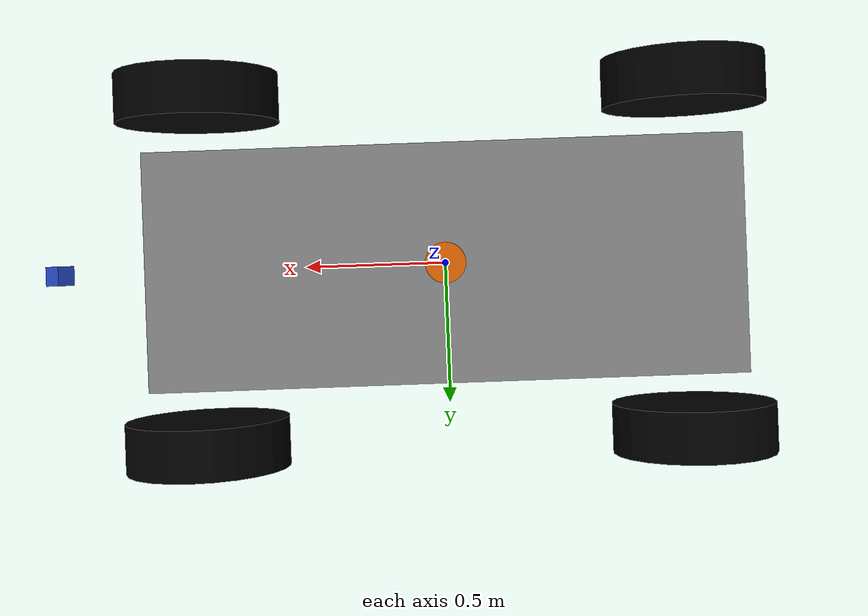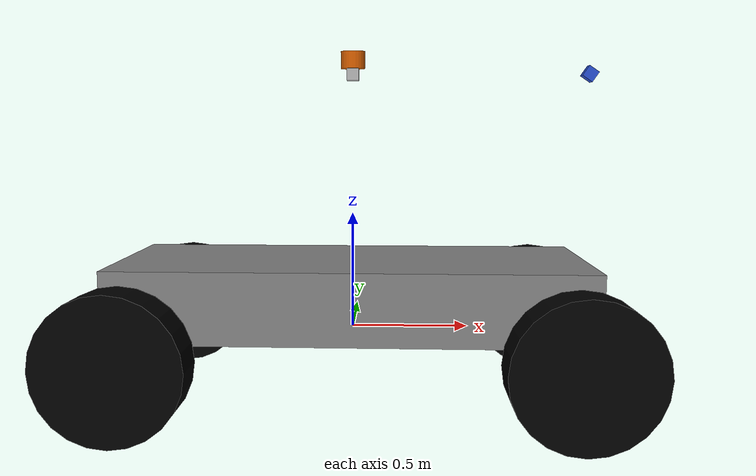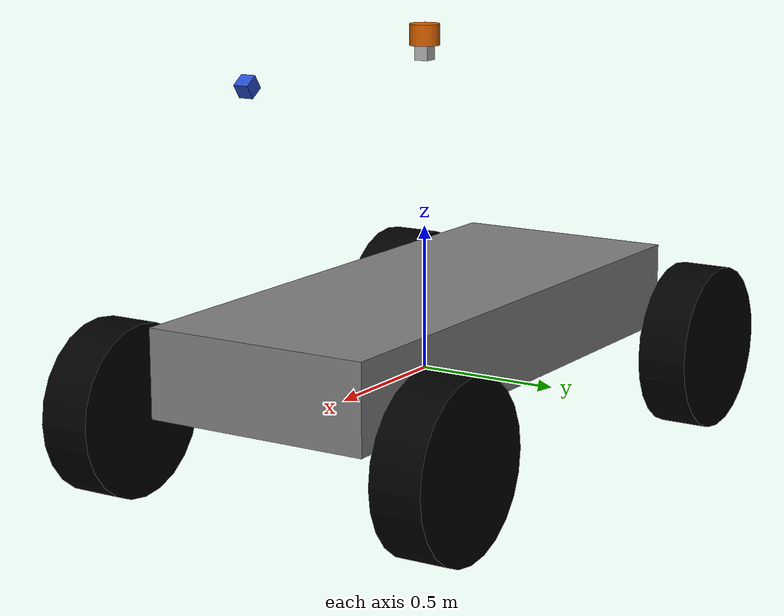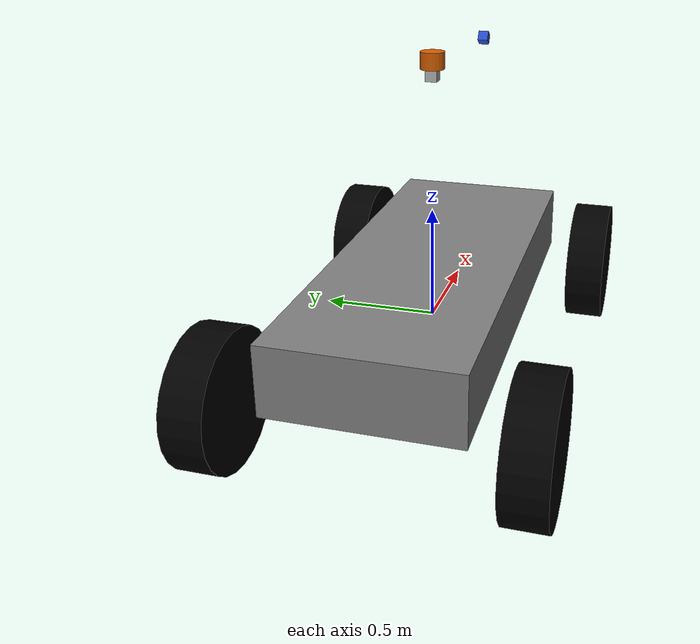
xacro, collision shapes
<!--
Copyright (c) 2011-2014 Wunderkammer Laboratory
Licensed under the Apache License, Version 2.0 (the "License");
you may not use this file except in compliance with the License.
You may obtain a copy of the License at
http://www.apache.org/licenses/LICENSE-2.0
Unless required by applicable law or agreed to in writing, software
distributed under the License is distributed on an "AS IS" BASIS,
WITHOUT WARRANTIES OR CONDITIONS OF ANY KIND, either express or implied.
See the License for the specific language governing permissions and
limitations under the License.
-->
<?xml version="1.0"?>

<robot name="em_3905" xmlns:xacro="http://www.ros.org/wiki/xacro">

	<xacro:macro name="cylinder_inertia" params="m r h">
		<inertia  ixx="${m*(3*r*r+h*h)/12}" ixy = "0" ixz = "0"
		          iyy="${m*(3*r*r+h*h)/12}" iyz = "0"
		          izz="${m*r*r/2}" />
	</xacro:macro>

	<xacro:macro name="box_inertia" params="m x y z">
		<inertia  ixx="${m*(y*y+z*z)/12}" ixy = "0" ixz = "0"
		          iyy="${m*(x*x+z*z)/12}" iyz = "0"
		          izz="${m*(x*x+z*z)/12}" />
	</xacro:macro>

	<xacro:macro name="sphere_inertia" params="m r">
		<inertia  ixx="${2*m*r*r/5}" ixy = "0" ixz = "0"
		          iyy="${2*m*r*r/5}" iyz = "0"
		          izz="${2*m*r*r/5}" />
	</xacro:macro>

  <!-- Degree-to-radian conversions -->
  <xacro:property name="degrees_45" value="0.785398163"/>
  <xacro:property name="degrees_90" value="1.57079633"/>

  <!-- chassis_length is measured along the x axis, chassis_width
       along the y axis, and chassis_height along the z axis. -->
  <xacro:property name="chassis_length" value="2.0"/>
  <xacro:property name="chassis_width" value="0.8"/>
  <xacro:property name="chassis_height" value="0.3"/>
  <xacro:property name="chassis_mass" value="2.788"/>

  <xacro:property name="hub_dia" value="0.381"/>
  <xacro:property name="tire_dia" value="0.5842"/>
  <xacro:property name="tire_width" value="0.1778"/>
  <xacro:property name="hex_hub_depth" value="0.0889"/>
  <xacro:property name="wheel_mass" value="0.9"/>

  <xacro:property name="wheelbase" value="1.7526"/>
  <xacro:property name="hex_hub_dist" value="1.2446"/>
  <xacro:property name="axle_length" value="0.0"/>
  <xacro:property name="wheel_travel" value="0.084"/>
  <xacro:property name="shock_z_offset" value="0.0655"/>

  <xacro:property name="shock_eff_limit" value="12.5106"/>
  <xacro:property name="shock_vel_limit" value="1000"/>

  <xacro:property name="axle_eff_limit" value="5.12766"/>
  <xacro:property name="axle_vel_limit" value="244.8696"/>

  <!-- These constants are used to simulate a Traxxas 2056 servo operated at
       6 V. servo_stall_torque is measured in N m. servo_no_load_speed is
       measured in rad/s. -->
  <xacro:property name="servo_stall_torque" value="10"/>
  <xacro:property name="servo_no_load_speed" value="20"/>

	<xacro:property name="cameraSize" value=".05"/>

  <material name="battery_mat">
    <color rgba="0 0 1 1"/>
  </material>
  <material name="chassis_mat">
    <color rgba="0.5 0.5 0.5 1"/>
  </material>
  <material name="tire_mat">
    <color rgba="0 0 0 1"/>
  </material>

  <!-- Null inertial element. This is needed to make the model work with
       Gazebo. -->
  <xacro:macro name="null_inertial">
    <inertial>
      <mass value="0.001"/>
      <inertia ixx="0.001" ixy="0" ixz="0" iyy="0.001" iyz="0" izz="0.001"/>
    </inertial>
  </xacro:macro>

  <!-- Inertia of a solid cuboid. Width is measured along the x axis, depth
       along the y axis, and height along the z axis. -->
  <xacro:macro name="solid_cuboid_inertial"
               params="width depth height mass *origin">
    <inertial>
      <xacro:insert_block name="origin"/>
      <mass value="${mass}"/>
      <inertia ixx="${mass * (depth * depth + height * height) / 12}"
               ixy="0" ixz="0"
               iyy="${mass * (width * width + height * height) / 12}"
               iyz="0"
               izz="${mass * (width * width + depth * depth) / 12}"/>
    </inertial>
  </xacro:macro>

  <xacro:macro name="thick_walled_tube_inertial"
               params="inner_rad outer_rad height mass">
    <inertial>
      <mass value="${mass}"/>
      <inertia ixx="${(1 / 12) * mass * (3 * (inner_rad * inner_rad +
                    outer_rad * outer_rad) + height * height)}"
               ixy="0" ixz="0"
               iyy="${(1 / 12) * mass * (3 * (inner_rad * inner_rad +
                    outer_rad * outer_rad) + height * height)}"
               iyz="0"
               izz="${mass * (inner_rad * inner_rad +
                    outer_rad * outer_rad) / 2}"/>
    </inertial>
  </xacro:macro>

  <!-- Shock absorber -->
  <xacro:macro name="shock"
               params="lr_prefix fr_prefix lr_reflect fr_reflect child">
    <joint name="${lr_prefix}_${fr_prefix}_shock" type="prismatic">
      <parent link="chassis"/>
      <child link="${child}"/>

      <origin xyz="${fr_reflect * wheelbase / 2}
                   ${lr_reflect * ((hex_hub_dist / 2) - axle_length)}
                   ${(wheel_travel / 2) - shock_z_offset}"/>
      <axis xyz="0 0 -1"/>
      <limit lower="${-wheel_travel / 2}" upper="${wheel_travel / 2}"
             effort="${shock_eff_limit}" velocity="${shock_vel_limit}"/>
    </joint>
    <transmission name="${lr_prefix}_${fr_prefix}_shock_trans">
      <type>transmission_interface/SimpleTransmission</type>
      <joint name="${lr_prefix}_${fr_prefix}_shock">
        <hardwareInterface>EffortJointInterface</hardwareInterface>
      </joint>
      <actuator name="${lr_prefix}_${fr_prefix}_shock_act">
        <!-- This hardwareInterface element exists for compatibility
             with ROS Hydro. -->
        <hardwareInterface>EffortJointInterface</hardwareInterface>
        <mechanicalReduction>1</mechanicalReduction>
      </actuator>
    </transmission>
  </xacro:macro>

  <!-- The "wheel" macro defines an axle carrier, axle, and wheel. -->
  <xacro:macro name="wheel" params="lr_prefix fr_prefix lr_reflect">
    <link name="${lr_prefix}_${fr_prefix}_axle_carrier">
      <xacro:null_inertial/>
    </link>

    <!-- The left and right axles have the same axis so that identical
         rotation values cause the wheels to rotate in the same direction. -->
    <joint name="${lr_prefix}_${fr_prefix}_axle" type="continuous">
      <parent link="${lr_prefix}_${fr_prefix}_axle_carrier"/>
      <child link="${lr_prefix}_${fr_prefix}_wheel"/>
      <origin rpy="${degrees_90} 0 0"/>
      <axis xyz="0 0 -1"/>
      <limit effort="${axle_eff_limit}" velocity="${axle_vel_limit}"/>
    </joint>
    <transmission name="${lr_prefix}_${fr_prefix}_axle_trans">
      <type>transmission_interface/SimpleTransmission</type>
      <joint name="${lr_prefix}_${fr_prefix}_axle">
        <hardwareInterface>EffortJointInterface</hardwareInterface>
      </joint>
      <actuator name="${lr_prefix}_${fr_prefix}_axle_act">
        <!-- This hardwareInterface element exists for compatibility
             with ROS Hydro. -->
        <hardwareInterface>EffortJointInterface</hardwareInterface>
        <mechanicalReduction>1</mechanicalReduction>
      </actuator>
    </transmission>

    <link name="${lr_prefix}_${fr_prefix}_wheel">
      <visual>
        <origin xyz="0
                     ${lr_reflect * (axle_length - (tire_width /
                     2 - hex_hub_depth))}
                     0"/>
        <geometry>
          <cylinder radius="${tire_dia / 2}" length="${tire_width}"/>
        </geometry>
        <material name="tire_mat"/>
      </visual>

      <collision>
        <origin xyz="0
                     ${lr_reflect * (axle_length - (tire_width /
                     2 - hex_hub_depth))}
                     0"/>
        <geometry>
          <cylinder radius="${tire_dia / 2}" length="${tire_width}"/>
        </geometry>
      </collision>

      <xacro:thick_walled_tube_inertial
          inner_rad="${hub_dia / 2}" outer_rad="${tire_dia / 2}"
          height="${tire_width}" mass="${wheel_mass}"/>
    </link>

    <gazebo reference="${lr_prefix}_${fr_prefix}_wheel">
      <material>Gazebo/Black</material>
    </gazebo>
  </xacro:macro>

  <!-- Front wheel -->
  <xacro:macro name="front_wheel"
               params="lr_prefix fr_prefix lr_reflect fr_reflect">
    <xacro:shock lr_prefix="${lr_prefix}" fr_prefix="${fr_prefix}"
                 lr_reflect="${lr_reflect}" fr_reflect="${fr_reflect}"
                 child="${lr_prefix}_steering_link"/>

    <link name="${lr_prefix}_steering_link">
      <xacro:null_inertial/>
    </link>

    <joint name="${lr_prefix}_steering_joint" type="revolute">
      <parent link="${lr_prefix}_steering_link"/>
      <child link="${lr_prefix}_${fr_prefix}_axle_carrier"/>
      <axis xyz="0 0 1"/>
      <limit lower="${-degrees_45}" upper="${degrees_45}"
             effort="${servo_stall_torque}" velocity="${servo_no_load_speed}"/>
    </joint>
    <transmission name="${lr_prefix}_steering_trans">
      <type>transmission_interface/SimpleTransmission</type>
      <joint name="${lr_prefix}_steering_joint">
        <hardwareInterface>EffortJointInterface</hardwareInterface>
      </joint>
      <actuator name="${lr_prefix}_steering_act">
        <!-- This hardwareInterface element exists for compatibility
             with ROS Hydro. -->
        <hardwareInterface>EffortJointInterface</hardwareInterface>
        <mechanicalReduction>1</mechanicalReduction>
      </actuator>
    </transmission>

    <xacro:wheel lr_prefix="${lr_prefix}" fr_prefix="${fr_prefix}"
                 lr_reflect="${lr_reflect}"/>
  </xacro:macro>

  <!-- Rear wheel -->
  <xacro:macro name="rear_wheel"
               params="lr_prefix fr_prefix lr_reflect fr_reflect">
    <xacro:shock lr_prefix="${lr_prefix}" fr_prefix="${fr_prefix}"
                 lr_reflect="${lr_reflect}" fr_reflect="${fr_reflect}"
                 child="${lr_prefix}_${fr_prefix}_axle_carrier"/>
    <xacro:wheel lr_prefix="${lr_prefix}" fr_prefix="${fr_prefix}"
                 lr_reflect="${lr_reflect}"/>
  </xacro:macro>

  <!-- base_link must have geometry so that its axes can be displayed in
       rviz. -->
  <link name="base_link">
    <visual>
      <geometry>
        <box size="0.01 0.01 0.01"/>
      </geometry>
      <material name="chassis_mat"/>
    </visual>
  </link>
  <gazebo reference="base_link">
    <material>Gazebo/Grey</material>
  </gazebo>

  <!-- Chassis -->
  <link name="chassis">
    <visual>
      <origin xyz="0 0 ${chassis_height / 2}"/>
      <geometry>
        <box size="${chassis_length} ${chassis_width} ${chassis_height}"/>
      </geometry>
      <material name="chassis_mat"/>
    </visual>

    <collision>
      <origin xyz="0 0 ${chassis_height / 2}"/>
      <geometry>
        <box size="${chassis_length} ${chassis_width} ${chassis_height}"/>
      </geometry>
    </collision>

    <xacro:solid_cuboid_inertial
        width="${chassis_length}" depth="${chassis_width}"
        height="${chassis_height}" mass="${chassis_mass}">
      <origin xyz="0 0 ${-chassis_height / 2}"/>
    </xacro:solid_cuboid_inertial>
  </link>
  <gazebo reference="chassis">
    <material>Gazebo/Grey</material>
  </gazebo>

  <joint name="base_link_to_chassis" type="fixed">
    <parent link="base_link"/>
    <child link="chassis"/>
  </joint>

  <!-- Wheels -->
  <xacro:front_wheel lr_prefix="left" fr_prefix="front"
                     lr_reflect="1" fr_reflect="1"/>
  <xacro:front_wheel lr_prefix="right" fr_prefix="front"
                     lr_reflect="-1" fr_reflect="1"/>
  <xacro:rear_wheel lr_prefix="left" fr_prefix="rear"
                    lr_reflect="1" fr_reflect="-1"/>
  <xacro:rear_wheel lr_prefix="right" fr_prefix="rear"
                    lr_reflect="-1" fr_reflect="-1"/>

  <gazebo>
    <plugin name="gazebo_ros_control" filename="libgazebo_ros_control.so"/>
		<legacyModeNS>true</legacyModeNS>
  </gazebo>

	<!-- Camera -->
	<!-- You can adjust the camera angle with the p in rpy, measured in radians. -->
	<!-- You can also increate the height of the camera by adding a number, in meters, -->
	<!-- to the z in xyz. For example, to simulate a camera mounted on a 1/2 meter post, -->
	<!-- we can replace the z value with ${wheelRadius+chassisHeight+0.5}   							-->
  <joint name="camera_joint" type="fixed">
    <origin xyz="${chassis_length/2} 0 ${(tire_dia/2)+chassis_height+.5}" rpy="0 .6 0"/>
    <parent link="chassis"/>
    <child link="camera"/>
  </joint>

  <link name="camera">
    <collision>
      <origin xyz="0 0 0" rpy="0 0 0"/>
      <geometry>
	<box size="${cameraSize} ${cameraSize} ${cameraSize}"/>
      </geometry>
    </collision>

    <visual>
      <origin xyz="0 0 0" rpy="0 0 0"/>
      <geometry>
	<box size="${cameraSize} ${cameraSize} ${cameraSize}"/>
      </geometry>
      <material name="blue"/>
    </visual>

    <inertial>
      <mass value="0.05" />
      <origin xyz="0 0 0" rpy="0 0 0"/>
      <box_inertia m="0.05" x="${cameraSize}" y="${cameraSize}" z="${cameraSize}" />
    </inertial>
  </link>

 <gazebo reference="camera">
  <material>Gazebo/Blue</material>
  <sensor type="camera" name="camera1">
      <update_rate>30.0</update_rate>
      <camera name="head">
        <horizontal_fov>1.3962634</horizontal_fov>
        <image>
          <width>800</width>
          <height>800</height>
          <format>R8G8B8</format>
        </image>
        <clip>
          <near>0.02</near>
          <far>300</far>
        </clip>
      </camera>
      <plugin name="camera_controller" filename="libgazebo_ros_camera.so">
        <alwaysOn>true</alwaysOn>
        <updateRate>0.0</updateRate>
        <cameraName>camera1</cameraName>
        <imageTopicName>image_raw</imageTopicName>
        <cameraInfoTopicName>camera_info</cameraInfoTopicName>
        <frameName>camera_link</frameName>
        <hackBaseline>0.07</hackBaseline>
        <distortionK1>0.0</distortionK1>
        <distortionK2>0.0</distortionK2>
        <distortionK3>0.0</distortionK3>
        <distortionT1>0.0</distortionT1>
        <distortionT2>0.0</distortionT2>
      </plugin>
    </sensor>
 </gazebo>

  <xacro:include filename="$(find velodyne_description)/urdf/VLP-16.urdf.xacro"/>
  <VLP-16 parent="mount" name="velodyne" topic="/velodyne_points">
    <origin xyz="0 0 0.025" rpy="0 0 0" />
  </VLP-16>

  <joint name="mount" type="fixed" >
   <parent link="chassis" />
    <child link="mount" />
    <origin xyz="0 0 ${(tire_dia/2)+chassis_height+0.5}" rpy="0 0 0" />
  </joint>
  <link name="mount" >
    <visual>
      <geometry>
        <box size="0.05 0.05 0.05" />
      </geometry>
    </visual>
    <collision>
      <geometry>
        <box size="0.05 0.05 0.05" />
      </geometry>
    </collision>
    <inertial>
      <origin xyz="0 0 0"/>
      <mass value="10"/>
      <inertia ixx="3.0" ixy="0.0" ixz="0.0"
               iyy="3.0" iyz="0.0"
               izz="3.0" />
    </inertial>
  </link>

</robot>

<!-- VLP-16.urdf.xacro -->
<robot xmlns:xacro="http://www.ros.org/wiki/xacro" name="VLP-16">
  <xacro:property name="M_PI" value="3.1415926535897931" />
  <xacro:macro name="VLP-16" params="*origin is_sim:=true parent:=base_link name:=velodyne tf_prefix:='' topic:=/velodyne_points organize_cloud:=false hz:=10 lasers:=16 samples:=1875 collision_range:=0.3 min_range:=0.0 max_range:=100.0 noise:=0.008 min_angle:=-${M_PI} max_angle:=${M_PI} gpu:=false">

    <joint name="${name}_base_mount_joint" type="fixed">
      <xacro:insert_block name="origin" />
      <parent link="${parent}"/>
      <child link="${name}_base_link"/>
    </joint>

    <link name="${name}_base_link">
      <inertial>
        <mass value="0.83"/>
        <origin xyz="0 0 0.03585"/>
        <inertia ixx="${(0.83 * (3.0*0.0516*0.0516 + 0.0717*0.0717)) / 12.0}" ixy="0" ixz="0"
          iyy="${(0.83 * (3.0*0.0516*0.0516 + 0.0717*0.0717)) / 12.0}" iyz="0"
          izz="${0.5 * 0.83 * (0.0516*0.0516)}"/>
      </inertial>
      <visual>
        <geometry>
          <mesh filename="package://velodyne_description/meshes/VLP16_base_1.dae" />
        </geometry>
      </visual>
      <visual>
        <geometry>
          <mesh filename="package://velodyne_description/meshes/VLP16_base_2.dae" />
        </geometry>
      </visual>
      <collision>
        <origin rpy="0 0 0" xyz="0 0 0.03585"/>
        <geometry>
          <cylinder radius="0.0516" length="0.0717"/>
        </geometry>
      </collision>
    </link>

    <joint name="${name}_base_scan_joint" type="fixed" >
      <origin xyz="0 0 0.0377" rpy="0 0 0" />
      <parent link="${name}_base_link" />
      <child link="${name}"/>
    </joint>

    <link name="${name}">
      <inertial>
        <mass value="0.01"/>
        <origin xyz="0 0 0"/>
        <inertia ixx="1e-7" ixy="0" ixz="0" iyy="1e-7" iyz="0" izz="1e-7"/>
      </inertial>
      <visual>
        <origin xyz="0 0 -0.0377" />
        <geometry>
          <mesh filename="package://velodyne_description/meshes/VLP16_scan.dae" />
        </geometry>
      </visual>
      <collision>
        <geometry>
          <sphere radius="0"/>
        </geometry>
      </collision>
    </link>

    <!-- Gazebo requires the velodyne_gazebo_plugins package -->
    <xacro:if value="${is_sim}">
        <gazebo reference="${name}">
            <xacro:if value="${gpu}">
                <sensor type="gpu_ray" name="${name}-VLP16">
                <pose>0 0 0 0 0 0</pose>
                <visualize>false</visualize>
                <update_rate>${hz}</update_rate>
                <ray>
                    <scan>
                    <horizontal>
                        <samples>${samples}</samples>
                        <resolution>1</resolution>
                        <min_angle>${min_angle}</min_angle>
                        <max_angle>${max_angle}</max_angle>
                    </horizontal>
                    <vertical>
                        <samples>${lasers}</samples>
                        <resolution>1</resolution>
                        <min_angle>-${15.0*M_PI/180.0}</min_angle>
                        <max_angle> ${15.0*M_PI/180.0}</max_angle>
                    </vertical>
                    </scan>
                    <range>
                    <min>${collision_range}</min>
                    <max>${max_range+1}</max>
                    <resolution>0.001</resolution>
                    </range>
                    <noise>
                    <type>gaussian</type>
                    <mean>0.0</mean>
                    <stddev>0.0</stddev>
                    </noise>
                </ray>
                <plugin name="gazebo_ros_laser_controller" filename="libgazebo_ros_velodyne_laser.so">
                    <ros>
                    <namespace>/${name}</namespace>
                    <remapping>~/out:=${topic}</remapping>
                    </ros>
                    <tf_prefix>${tf_prefix}</tf_prefix>
                    <frame_name>${name}</frame_name>
                    <organize_cloud>${organize_cloud}</organize_cloud>
                    <min_range>${min_range}</min_range>
                    <max_range>${max_range}</max_range>
                    <gaussian_noise>${noise}</gaussian_noise>
                </plugin>
                </sensor>
            </xacro:if>
            <xacro:unless value="${gpu}">
                <sensor type="ray" name="${name}-VLP16">
                <pose>0 0 0 0 0 0</pose>
                <visualize>false</visualize>
                <update_rate>${hz}</update_rate>
                <ray>
                    <scan>
                    <horizontal>
                        <samples>${samples}</samples>
                        <resolution>1</resolution>
                        <min_angle>${min_angle}</min_angle>
                        <max_angle>${max_angle}</max_angle>
                    </horizontal>
                    <vertical>
                        <samples>${lasers}</samples>
                        <resolution>1</resolution>
                        <min_angle>-${15.0*M_PI/180.0}</min_angle>
                        <max_angle> ${15.0*M_PI/180.0}</max_angle>
                    </vertical>
                    </scan>
                    <range>
                    <min>${collision_range}</min>
                    <max>${max_range+1}</max>
                    <resolution>0.001</resolution>
                    </range>
                    <noise>
                    <type>gaussian</type>
                    <mean>0.0</mean>
                    <stddev>0.0</stddev>
                    </noise>
                </ray>
                <plugin name="gazebo_ros_laser_controller" filename="libgazebo_ros_velodyne_laser.so">
                    <ros>
                    <namespace>/${name}</namespace>
                    <remapping>~/out:=${topic}</remapping>
                    </ros>
                    <tf_prefix>${tf_prefix}</tf_prefix>
                    <frame_name>${name}</frame_name>
                    <organize_cloud>${organize_cloud}</organize_cloud>
                    <min_range>${min_range}</min_range>
                    <max_range>${max_range}</max_range>
                    <gaussian_noise>${noise}</gaussian_noise>
                </plugin>
                </sensor>
            </xacro:unless>
        </gazebo>
    </xacro:if>

  </xacro:macro>
</robot>
